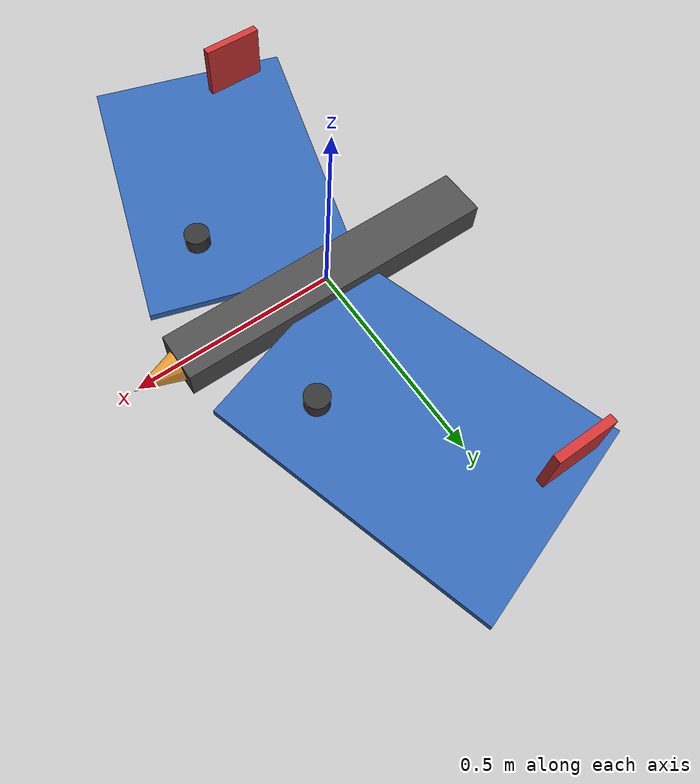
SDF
<?xml version="1.0"?>
<sdf version="1.10">
  <model name="plane">
    <static>false</static>

    <!-- Tailsitter fixed-wing VTOL -->
    <link name="base_link">
      <pose>0 0 0 0 0 0</pose>

      <inertial>
        <mass>2.5</mass>
        <inertia>
          <ixx>0.15</ixx>
          <ixy>0</ixy>
          <ixz>0</ixz>
          <iyy>0.08</iyy>
          <iyz>0</iyz>
          <izz>0.20</izz>
        </inertia>
      </inertial>

      <!-- Aerodynamic damping - high linear decay for low terminal velocity -->
      <velocity_decay>
        <linear>0.5</linear>
        <angular>0.8</angular>
      </velocity_decay>

      <!-- Main fuselage - elongated for tailsitter -->
      <collision name="fuselage_collision">
        <pose>0 0 0 0 0 0</pose>
        <geometry>
          <box>
            <size>0.8 0.12 0.08</size>
          </box>
        </geometry>
      </collision>

      <visual name="fuselage_visual">
        <pose>0 0 0 0 0 0</pose>
        <geometry>
          <box>
            <size>0.8 0.12 0.08</size>
          </box>
        </geometry>
        <material>
          <ambient>0.2 0.2 0.2 1</ambient>
          <diffuse>0.3 0.3 0.3 1</diffuse>
        </material>
      </visual>

      <!-- Delta wing - Left -->
      <visual name="wing_left_visual">
        <pose>0.05 0.4 0 0 0 0.3</pose>
        <geometry>
          <box>
            <size>0.5 0.7 0.02</size>
          </box>
        </geometry>
        <material>
          <ambient>0.1 0.3 0.6 1</ambient>
          <diffuse>0.2 0.4 0.7 1</diffuse>
        </material>
      </visual>

      <collision name="wing_left_collision">
        <pose>0.05 0.4 0 0 0 0.3</pose>
        <geometry>
          <box>
            <size>0.5 0.7 0.02</size>
          </box>
        </geometry>
      </collision>

      <!-- Delta wing - Right -->
      <visual name="wing_right_visual">
        <pose>0.05 -0.4 0 0 0 -0.3</pose>
        <geometry>
          <box>
            <size>0.5 0.7 0.02</size>
          </box>
        </geometry>
        <material>
          <ambient>0.1 0.3 0.6 1</ambient>
          <diffuse>0.2 0.4 0.7 1</diffuse>
        </material>
      </visual>

      <collision name="wing_right_collision">
        <pose>0.05 -0.4 0 0 0 -0.3</pose>
        <geometry>
          <box>
            <size>0.5 0.7 0.02</size>
          </box>
        </geometry>
      </collision>

      <!-- Vertical stabilizer - Left winglet -->
      <visual name="winglet_left_visual">
        <pose>-0.15 0.65 0.08 0 0 0</pose>
        <geometry>
          <box>
            <size>0.15 0.02 0.15</size>
          </box>
        </geometry>
        <material>
          <ambient>0.6 0.1 0.1 1</ambient>
          <diffuse>0.8 0.2 0.2 1</diffuse>
        </material>
      </visual>

      <!-- Vertical stabilizer - Right winglet -->
      <visual name="winglet_right_visual">
        <pose>-0.15 -0.65 0.08 0 0 0</pose>
        <geometry>
          <box>
            <size>0.15 0.02 0.15</size>
          </box>
        </geometry>
        <material>
          <ambient>0.6 0.1 0.1 1</ambient>
          <diffuse>0.8 0.2 0.2 1</diffuse>
        </material>
      </visual>

      <!-- Nose cone (direction indicator) -->
      <visual name="nose_visual">
        <pose>0.45 0 0 0 1.5708 0</pose>
        <geometry>
          <cone>
            <radius>0.04</radius>
            <length>0.12</length>
          </cone>
        </geometry>
        <material>
          <ambient>0.8 0.5 0.1 1</ambient>
          <diffuse>0.9 0.6 0.2 1</diffuse>
        </material>
      </visual>

      <!-- Motor mount indicators (left) -->
      <visual name="motor_left_visual">
        <pose>0.2 0.25 0.03 0 0 0</pose>
        <geometry>
          <cylinder>
            <radius>0.03</radius>
            <length>0.04</length>
          </cylinder>
        </geometry>
        <material>
          <ambient>0.1 0.1 0.1 1</ambient>
          <diffuse>0.2 0.2 0.2 1</diffuse>
        </material>
      </visual>

      <!-- Motor mount indicators (right) -->
      <visual name="motor_right_visual">
        <pose>0.2 -0.25 0.03 0 0 0</pose>
        <geometry>
          <cylinder>
            <radius>0.03</radius>
            <length>0.04</length>
          </cylinder>
        </geometry>
        <material>
          <ambient>0.1 0.1 0.1 1</ambient>
          <diffuse>0.2 0.2 0.2 1</diffuse>
        </material>
      </visual>

      <!-- Forward-facing camera for visualization -->
      <sensor name="camera" type="camera">
        <pose>0.4 0 0 0 0 0</pose>
        <always_on>true</always_on>
        <update_rate>30</update_rate>
        <visualize>true</visualize>
        <topic>camera</topic>
        <camera>
          <horizontal_fov>1.39626</horizontal_fov>
          <image>
            <width>640</width>
            <height>480</height>
            <format>R8G8B8</format>
          </image>
          <clip>
            <near>0.1</near>
            <far>1000</far>
          </clip>
          <noise>
            <type>gaussian</type>
            <mean>0.0</mean>
            <stddev>0.007</stddev>
          </noise>
        </camera>
      </sensor>

      <!-- Downward-facing camera for ground tracking -->
      <sensor name="camera_down" type="camera">
        <pose>0 0 -0.06 0 1.5708 0</pose>
        <always_on>true</always_on>
        <update_rate>30</update_rate>
        <visualize>false</visualize>
        <topic>camera_down</topic>
        <camera>
          <horizontal_fov>1.04720</horizontal_fov>
          <image>
            <width>640</width>
            <height>480</height>
            <format>R8G8B8</format>
          </image>
          <clip>
            <near>0.5</near>
            <far>500</far>
          </clip>
        </camera>
      </sensor>

      <!-- 3rd person follow camera (attached to plane, offset behind and above) -->
      <sensor name="follow_cam" type="camera">
        <gz_frame_id>base_link</gz_frame_id>
        <pose>-5 0 2 0 0.3 0</pose>
        <always_on>true</always_on>
        <update_rate>30</update_rate>
        <visualize>false</visualize>
        <topic>follow_camera</topic>
        <camera>
          <horizontal_fov>1.39626</horizontal_fov>
          <image>
            <width>1280</width>
            <height>720</height>
            <format>R8G8B8</format>
          </image>
          <clip>
            <near>0.5</near>
            <far>2000</far>
          </clip>
        </camera>
      </sensor>

      <!-- IMU sensor for PX4 EKF (250Hz) -->
      <sensor name="imu_sensor" type="imu">
        <always_on>true</always_on>
        <update_rate>250</update_rate>
        <topic>imu</topic>
        <imu>
          <angular_velocity>
            <x>
              <noise type="gaussian">
                <mean>0</mean>
                <stddev>0.009</stddev>
                <bias_mean>0.00075</bias_mean>
                <bias_stddev>0.0001</bias_stddev>
              </noise>
            </x>
            <y>
              <noise type="gaussian">
                <mean>0</mean>
                <stddev>0.009</stddev>
                <bias_mean>0.00075</bias_mean>
                <bias_stddev>0.0001</bias_stddev>
              </noise>
            </y>
            <z>
              <noise type="gaussian">
                <mean>0</mean>
                <stddev>0.009</stddev>
                <bias_mean>0.00075</bias_mean>
                <bias_stddev>0.0001</bias_stddev>
              </noise>
            </z>
          </angular_velocity>
          <linear_acceleration>
            <x>
              <noise type="gaussian">
                <mean>0</mean>
                <stddev>0.021</stddev>
                <bias_mean>0.05</bias_mean>
                <bias_stddev>0.005</bias_stddev>
              </noise>
            </x>
            <y>
              <noise type="gaussian">
                <mean>0</mean>
                <stddev>0.021</stddev>
                <bias_mean>0.05</bias_mean>
                <bias_stddev>0.005</bias_stddev>
              </noise>
            </y>
            <z>
              <noise type="gaussian">
                <mean>0</mean>
                <stddev>0.021</stddev>
                <bias_mean>0.05</bias_mean>
                <bias_stddev>0.005</bias_stddev>
              </noise>
            </z>
          </linear_acceleration>
        </imu>
      </sensor>

      <!-- Air pressure sensor / Barometer for altitude (50Hz) -->
      <sensor name="air_pressure_sensor" type="air_pressure">
        <always_on>true</always_on>
        <update_rate>50</update_rate>
        <topic>air_pressure</topic>
        <air_pressure>
          <reference_altitude>0</reference_altitude>
          <pressure>
            <noise type="gaussian">
              <mean>0</mean>
              <stddev>0.01</stddev>
            </noise>
          </pressure>
        </air_pressure>
      </sensor>

      <!-- Magnetometer for heading reference (50Hz) -->
      <sensor name="magnetometer_sensor" type="magnetometer">
        <always_on>true</always_on>
        <update_rate>50</update_rate>
        <topic>magnetometer</topic>
        <magnetometer>
          <x>
            <noise type="gaussian">
              <mean>0</mean>
              <stddev>0.006</stddev>
            </noise>
          </x>
          <y>
            <noise type="gaussian">
              <mean>0</mean>
              <stddev>0.006</stddev>
            </noise>
          </y>
          <z>
            <noise type="gaussian">
              <mean>0</mean>
              <stddev>0.006</stddev>
            </noise>
          </z>
        </magnetometer>
      </sensor>
    </link>

    <!-- Odometry publisher plugin (Gazebo Harmonic) -->
    <plugin
      filename="gz-sim-odometry-publisher-system"
      name="gz::sim::systems::OdometryPublisher">
      <odom_frame>world</odom_frame>
      <robot_base_frame>base_link</robot_base_frame>
      <odom_publish_frequency>50</odom_publish_frequency>
      <dimensions>3</dimensions>
    </plugin>

    <!-- IMU system plugin -->
    <plugin
      filename="gz-sim-imu-system"
      name="gz::sim::systems::Imu">
    </plugin>

    <!-- Air pressure / Barometer system plugin -->
    <plugin
      filename="gz-sim-air-pressure-system"
      name="gz::sim::systems::AirPressure">
    </plugin>

    <!-- Magnetometer system plugin -->
    <plugin
      filename="gz-sim-magnetometer-system"
      name="gz::sim::systems::Magnetometer">
    </plugin>

    <!-- Aerodynamic lift/drag for left wing -->
    <plugin
      filename="gz-sim-lift-drag-system"
      name="gz::sim::systems::LiftDrag">
      <link_name>base_link</link_name>
      <air_density>1.225</air_density>
      <area>0.35</area>
      <a0>0.1</a0>
      <cla>4.0</cla>
      <cda>0.02</cda>
      <cp>0.05 0.4 0</cp>
      <forward>1 0 0</forward>
      <upward>0 0 1</upward>
    </plugin>

    <!-- Aerodynamic lift/drag for right wing -->
    <plugin
      filename="gz-sim-lift-drag-system"
      name="gz::sim::systems::LiftDrag">
      <link_name>base_link</link_name>
      <air_density>1.225</air_density>
      <area>0.35</area>
      <a0>0.1</a0>
      <cla>4.0</cla>
      <cda>0.02</cda>
      <cp>0.05 -0.4 0</cp>
      <forward>1 0 0</forward>
      <upward>0 0 1</upward>
    </plugin>

    <!-- Fuselage drag -->
    <plugin
      filename="gz-sim-lift-drag-system"
      name="gz::sim::systems::LiftDrag">
      <link_name>base_link</link_name>
      <air_density>1.225</air_density>
      <area>0.05</area>
      <a0>0.0</a0>
      <cla>0.0</cla>
      <cda>0.5</cda>
      <cp>0 0 0</cp>
      <forward>1 0 0</forward>
      <upward>0 0 1</upward>
    </plugin>

  </model>
</sdf>
